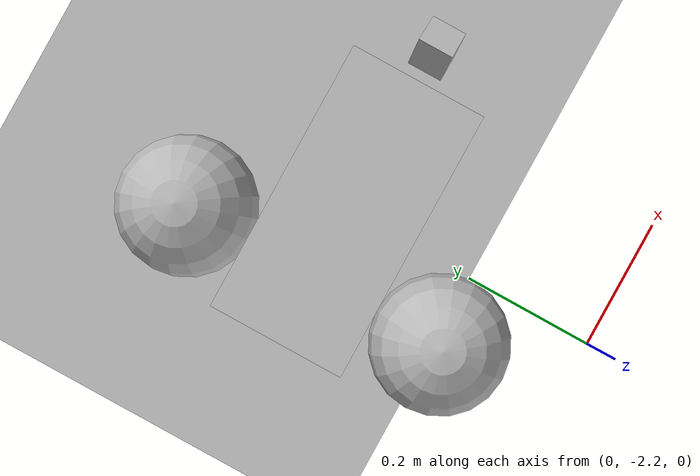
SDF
<sdf version="1.6">
 <world name="default">
  <light name="sun" type="directional">
   <pose>0 0 10 0 -0 0</pose>
   <diffuse>0.8 0.8 0.8 1</diffuse>
   <specular>0.2 0.2 0.2 1</specular>
   <attenuation>
    <range>1000</range>
    <constant>0.9</constant>
    <linear>0.01</linear>
    <quadratic>0.001</quadratic>
   </attenuation>
   <direction>-0.5 0.1 -0.9</direction>
  </light>
  <gravity>0 0 -9.8</gravity>
  <magnetic_field>6e-06 2.3e-05 -4.2e-05</magnetic_field>
  <atmosphere type="adiabatic"/>
  <physics name="default_physics" default="0" type="ode">
   <max_step_size>0.001</max_step_size>
   <real_time_factor>1</real_time_factor>
   <real_time_update_rate>1000</real_time_update_rate>
  </physics>
  <scene><ambient>0.4 0.4 0.4 1</ambient><background>0.7 0.7 0.7 1</background><shadows>1</shadows></scene>
  <spherical_coordinates>
   <surface_model>EARTH_WGS84</surface_model>
   <latitude_deg>0</latitude_deg>
   <longitude_deg>0</longitude_deg>
   <elevation>0</elevation>
   <heading_deg>0</heading_deg>
  </spherical_coordinates>
  <model name="path">
   <static>1</static>
   <link name="link">
    <collision name="collision">
     <geometry><plane><normal>0 0 1</normal><size>4 4</size></plane></geometry>
     <surface><friction><ode><mu>100</mu><mu2>50</mu2></ode></friction></surface>
    </collision>
    <visual name="visual">
     <cast_shadows>0</cast_shadows>
     <geometry><plane><normal>0 0 1</normal><size>4 4</size></plane></geometry>
     <material>
      <script>
       <uri>model://path/materials/scripts/</uri>
       <uri>model://path/materials/textures</uri>
       <name>path/Image</name>
      </script>
     </material>
    </visual>
   </link>
  </model>
  <model name="qt_pi_rgb">
   <link name="chassis">
    <pose>0 0 0.1 0 -0 0</pose>
    <inertial>
     <mass>20</mass>
     <pose>0.1 0 -0.05 0 -0 0</pose>
     <inertia><ixx>1</ixx><ixy>0</ixy><ixz>0</ixz><iyy>1</iyy><iyz>0</iyz><izz>1</izz></inertia>
    </inertial>
    <collision name="collision"><geometry><box><size>0.4 0.2 0.1</size></box></geometry></collision>
    <visual name="visual"><geometry><box><size>0.4 0.2 0.1</size></box></geometry></visual>
    <collision name="caster_collision">
     <pose>0.15 0 -0.05 0 -0 0</pose>
     <geometry><sphere><radius>0.05</radius></sphere></geometry>
     <surface>
      <bounce><restitution_coefficient>0</restitution_coefficient><threshold>0.01</threshold></bounce>
      <contact><ode><max_vel>0</max_vel><min_depth>0.001</min_depth></ode></contact>
      <friction><ode><mu>0</mu><mu2>0</mu2><slip1>1</slip1><slip2>1</slip2></ode></friction>
     </surface>
    </collision>
    <visual name="caster_visual">
     <pose>0.15 0 -0.05 0 -0 0</pose>
     <geometry><sphere><radius>0.05</radius></sphere></geometry>
    </visual>
   </link>
   <link name="left_wheel">
    <pose>-0.1 0.2 0.1 0 -0 0</pose>
    <inertial>
     <mass>5</mass>
     <inertia><ixx>1</ixx><ixy>0</ixy><ixz>0</ixz><iyy>1</iyy><iyz>0</iyz><izz>1</izz></inertia>
    </inertial>
    <collision name="collision">
     <surface>
      <friction><ode><mu>10</mu><mu2>10</mu2></ode></friction>
      <bounce><restitution_coefficient>0</restitution_coefficient><threshold>0.01</threshold></bounce>
      <contact><ode><max_vel>0</max_vel><min_depth>0.001</min_depth></ode></contact>
     </surface>
     <geometry><sphere><radius>0.1</radius></sphere></geometry>
    </collision>
    <visual name="visual"><geometry><sphere><radius>0.1</radius></sphere></geometry></visual>
   </link>
   <link name="right_wheel">
    <pose>-0.1 -0.2 0.1 0 -0 0</pose>
    <inertial>
     <mass>5</mass>
     <inertia><ixx>1</ixx><ixy>0</ixy><ixz>0</ixz><iyy>1</iyy><iyz>0</iyz><izz>1</izz></inertia>
    </inertial>
    <collision name="collision">
     <surface>
      <friction><ode><mu>10</mu><mu2>10</mu2></ode></friction>
      <bounce><restitution_coefficient>0</restitution_coefficient><threshold>0.01</threshold></bounce>
      <contact><ode><max_vel>0</max_vel><min_depth>0.001</min_depth></ode></contact>
     </surface>
     <geometry><sphere><radius>0.1</radius></sphere></geometry>
    </collision>
    <visual name="visual"><geometry><sphere><radius>0.1</radius></sphere></geometry></visual>
   </link>
   <joint name="left_wheel_hinge" type="revolute">
    <child>left_wheel</child>
    <parent>chassis</parent>
    <axis>
     <xyz>0 1 0</xyz>
     <use_parent_model_frame>0</use_parent_model_frame>
     <limit><lower>-1e+16</lower><upper>1e+16</upper></limit>
     <dynamics><spring_reference>0</spring_reference><spring_stiffness>0</spring_stiffness></dynamics>
    </axis>
   </joint>
   <joint name="right_wheel_hinge" type="revolute">
    <child>right_wheel</child>
    <parent>chassis</parent>
    <axis>
     <xyz>0 1 0</xyz>
     <use_parent_model_frame>0</use_parent_model_frame>
     <limit><lower>-1e+16</lower><upper>1e+16</upper></limit>
     <dynamics><spring_reference>0</spring_reference><spring_stiffness>0</spring_stiffness></dynamics>
    </axis>
   </joint>
   <link name="cam_link">
    <pose>0.25 0 0.15 0 0.6 0</pose>
    <inertial>
     <mass>0.0001</mass>
     <inertia><ixx>1</ixx><ixy>0</ixy><ixz>0</ixz><iyy>1</iyy><iyz>0</iyz><izz>1</izz></inertia>
    </inertial>
    <collision name="cam_collision"><geometry><box><size>0.05 0.05 0.05</size></box></geometry></collision>
    <visual name="cam_visual"><geometry><box><size>0.05 0.05 0.05</size></box></geometry></visual>
    <sensor name="camera" type="camera">
     <camera name="__default__">
      <horizontal_fov>1.39626</horizontal_fov>
      <image><width>648</width><height>488</height><format>R8G8B8</format></image>
      <clip><near>0.02</near><far>300</far></clip>
      <noise><type>gaussian</type><mean>0</mean><stddev>0.007</stddev></noise>
     </camera>
     <plugin name="camera_controller" filename="libgazebo_ros_camera.so">
      <alwaysOn>1</alwaysOn>
      <updateRate>0.0</updateRate>
      <cameraName>front_camera</cameraName>
      <imageTopicName>image_raw</imageTopicName>
      <cameraInfoTopicName>camera_info</cameraInfoTopicName>
      <frameName>camera_link</frameName>
      <hackBaseline>0.07</hackBaseline>
      <distortionK1>0.0</distortionK1>
      <distortionK2>0.0</distortionK2>
      <distortionK3>0.0</distortionK3>
      <distortionT1>0.0</distortionT1>
      <distortionT2>0.0</distortionT2>
     </plugin>
    </sensor>
   </link>
   <joint name="cam_joint" type="fixed"><child>cam_link</child><parent>chassis</parent></joint>
   <plugin name="differential_drive_controller" filename="libgazebo_ros_diff_drive.so">
    <alwaysOn>1</alwaysOn>
    <updateRate>30</updateRate>
    <leftJoint>left_wheel_hinge</leftJoint>
    <robotNamespace>qt_pi</robotNamespace>
    <rightJoint>right_wheel_hinge</rightJoint>
    <wheelSeparation>0.4</wheelSeparation>
    <wheelDiameter>0.2</wheelDiameter>
    <publishWheelTF>0</publishWheelTF>
    <wheelTorque>5</wheelTorque>
    <commandTopic>cmd_vel</commandTopic>
    <odometryTopic>odom</odometryTopic>
    <robotBaseFrame>base_link</robotBaseFrame>
    <odometryFrame>odom</odometryFrame>
    <publishTf>1</publishTf>
    <publishOdomTF>1</publishOdomTF>
    <rosDebugLevel>1</rosDebugLevel>
    <publishWheelJointState>0</publishWheelJointState>
    <wheelAcceleration>0</wheelAcceleration>
   </plugin>
   <pose>-2e-06 -1.8 -7e-06 6e-06 1.7e-05 1e-06</pose>
  </model>
 </world>
</sdf>
